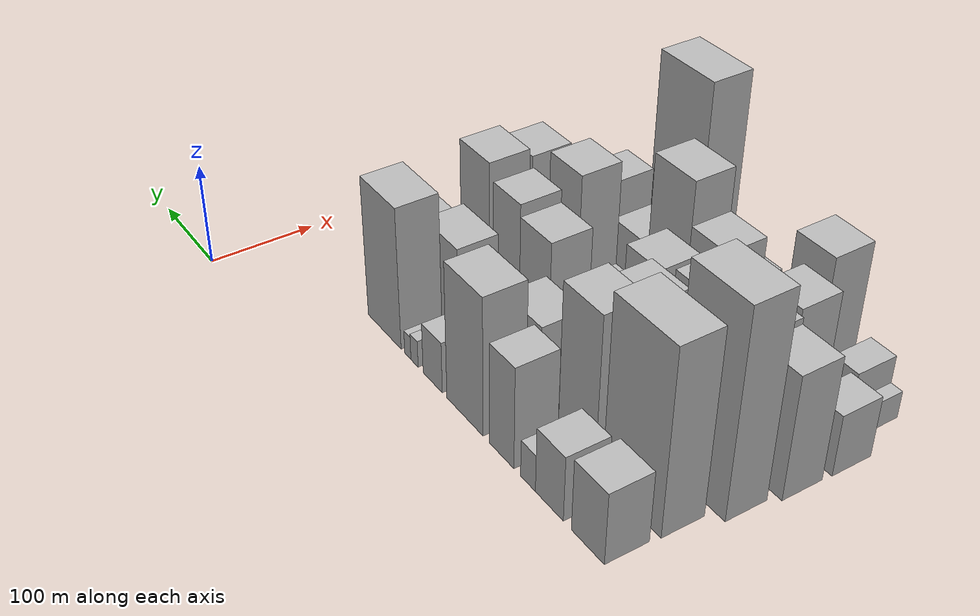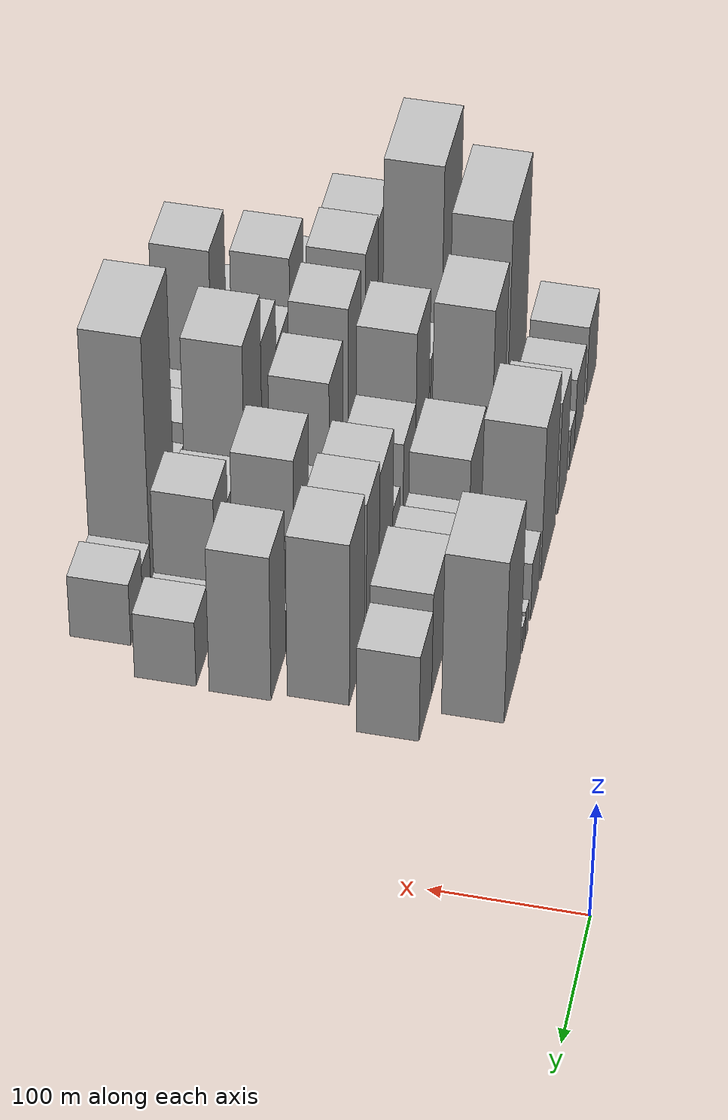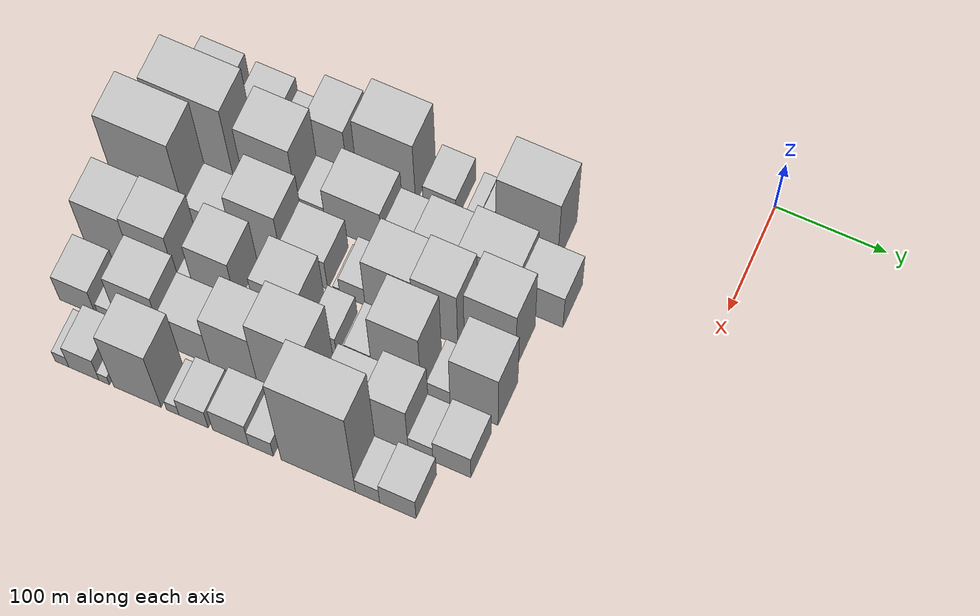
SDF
<sdf version="1.6">
 <world name="default">
  <model name="building_11">
   <static>1</static>
   <pose>100.0000 -465.9183 0 0.000000 0.000000 0.000000</pose>
   <link name="link">
    <pose>0 0 34.50 0 0 0</pose>
    <collision name="collision"><geometry><box><size>40.0000 39.9749 69.0000</size></box></geometry></collision>
    <visual name="visual">
     <cast_shadows>0</cast_shadows>
     <geometry><box><size>40.0000 39.9749 69.0000</size></box></geometry>
     <material>
      <script>
       <uri>model://HANNAS_wall/materials/scripts</uri>
       <uri>model://HANNAS_wall/materials/textures</uri>
       <name>vrc/HANNAS_wall</name>
      </script>
     </material>
    </visual>
   </link>
  </model>
  <model name="building_12">
   <static>1</static>
   <pose>100.0000 -417.9923 0 0.000000 0.000000 0.000000</pose>
   <link name="link">
    <pose>0 0 31.50 0 0 0</pose>
    <collision name="collision"><geometry><box><size>40.0000 35.8771 63.0000</size></box></geometry></collision>
    <visual name="visual">
     <cast_shadows>0</cast_shadows>
     <geometry><box><size>40.0000 35.8771 63.0000</size></box></geometry>
     <material>
      <script>
       <uri>model://HANNAS_wall/materials/scripts</uri>
       <uri>model://HANNAS_wall/materials/textures</uri>
       <name>vrc/HANNAS_wall</name>
      </script>
     </material>
    </visual>
   </link>
  </model>
  <model name="building_13">
   <static>1</static>
   <pose>100.0000 -390.1856 0 0.000000 0.000000 0.000000</pose>
   <link name="link">
    <pose>0 0 18.00 0 0 0</pose>
    <collision name="collision"><geometry><box><size>40.0000 19.7364 36.0000</size></box></geometry></collision>
    <visual name="visual">
     <cast_shadows>0</cast_shadows>
     <geometry><box><size>40.0000 19.7364 36.0000</size></box></geometry>
     <material>
      <script>
       <uri>model://HANNAS_wall/materials/scripts</uri>
       <uri>model://HANNAS_wall/materials/textures</uri>
       <name>vrc/HANNAS_wall</name>
      </script>
     </material>
    </visual>
   </link>
  </model>
  <model name="building_14">
   <static>1</static>
   <pose>100.0000 -354.2431 0 0.000000 0.000000 0.000000</pose>
   <link name="link">
    <pose>0 0 49.50 0 0 0</pose>
    <collision name="collision"><geometry><box><size>40.0000 34.1485 99.0000</size></box></geometry></collision>
    <visual name="visual">
     <cast_shadows>0</cast_shadows>
     <geometry><box><size>40.0000 34.1485 99.0000</size></box></geometry>
     <material>
      <script>
       <uri>model://HANNAS_wall/materials/scripts</uri>
       <uri>model://HANNAS_wall/materials/textures</uri>
       <name>vrc/HANNAS_wall</name>
      </script>
     </material>
    </visual>
   </link>
  </model>
  <model name="building_15">
   <static>1</static>
   <pose>100.0000 -301.3422 0 0.000000 0.000000 0.000000</pose>
   <link name="link">
    <pose>0 0 67.50 0 0 0</pose>
    <collision name="collision"><geometry><box><size>40.0000 53.6532 135.0000</size></box></geometry></collision>
    <visual name="visual">
     <cast_shadows>0</cast_shadows>
     <geometry><box><size>40.0000 53.6532 135.0000</size></box></geometry>
     <material>
      <script>
       <uri>model://HANNAS_wall/materials/scripts</uri>
       <uri>model://HANNAS_wall/materials/textures</uri>
       <name>vrc/HANNAS_wall</name>
      </script>
     </material>
    </visual>
   </link>
  </model>
  <model name="building_16">
   <static>1</static>
   <pose>100.0000 -252.4780 0 0.000000 0.000000 0.000000</pose>
   <link name="link">
    <pose>0 0 25.50 0 0 0</pose>
    <collision name="collision"><geometry><box><size>40.0000 30.0753 51.0000</size></box></geometry></collision>
    <visual name="visual">
     <cast_shadows>0</cast_shadows>
     <geometry><box><size>40.0000 30.0753 51.0000</size></box></geometry>
     <material>
      <script>
       <uri>model://HANNAS_wall/materials/scripts</uri>
       <uri>model://HANNAS_wall/materials/textures</uri>
       <name>vrc/HANNAS_wall</name>
      </script>
     </material>
    </visual>
   </link>
  </model>
  <model name="building_17">
   <static>1</static>
   <pose>100.0000 -223.5903 0 0.000000 0.000000 0.000000</pose>
   <link name="link">
    <pose>0 0 13.50 0 0 0</pose>
    <collision name="collision"><geometry><box><size>40.0000 11.7002 27.0000</size></box></geometry></collision>
    <visual name="visual">
     <cast_shadows>0</cast_shadows>
     <geometry><box><size>40.0000 11.7002 27.0000</size></box></geometry>
     <material>
      <script>
       <uri>model://HANNAS_wall/materials/scripts</uri>
       <uri>model://HANNAS_wall/materials/textures</uri>
       <name>vrc/HANNAS_wall</name>
      </script>
     </material>
    </visual>
   </link>
  </model>
  <model name="building_18">
   <static>1</static>
   <pose>100.0000 -212.6931 0 0.000000 0.000000 0.000000</pose>
   <link name="link">
    <pose>0 0 12.00 0 0 0</pose>
    <collision name="collision"><geometry><box><size>40.0000 10.0943 24.0000</size></box></geometry></collision>
    <visual name="visual">
     <cast_shadows>0</cast_shadows>
     <geometry><box><size>40.0000 10.0943 24.0000</size></box></geometry>
     <material>
      <script>
       <uri>model://HANNAS_wall/materials/scripts</uri>
       <uri>model://HANNAS_wall/materials/textures</uri>
       <name>vrc/HANNAS_wall</name>
      </script>
     </material>
    </visual>
   </link>
  </model>
  <model name="building_19">
   <static>1</static>
   <pose>100.0000 -173.6003 0 0.000000 0.000000 0.000000</pose>
   <link name="link">
    <pose>0 0 70.50 0 0 0</pose>
    <collision name="collision"><geometry><box><size>40.0000 56.0913 141.0000</size></box></geometry></collision>
    <visual name="visual">
     <cast_shadows>0</cast_shadows>
     <geometry><box><size>40.0000 56.0913 141.0000</size></box></geometry>
     <material>
      <script>
       <uri>model://HANNAS_wall/materials/scripts</uri>
       <uri>model://HANNAS_wall/materials/textures</uri>
       <name>vrc/HANNAS_wall</name>
      </script>
     </material>
    </visual>
   </link>
  </model>
  <model name="building_57">
   <static>1</static>
   <pose>149.0000 -452.4649 0 0.000000 0.000000 0.000000</pose>
   <link name="link">
    <pose>0 0 88.50 0 0 0</pose>
    <collision name="collision"><geometry><box><size>40.0000 70.7655 177.0000</size></box></geometry></collision>
    <visual name="visual">
     <cast_shadows>0</cast_shadows>
     <geometry><box><size>40.0000 70.7655 177.0000</size></box></geometry>
     <material>
      <script>
       <uri>model://HANNAS_wall/materials/scripts</uri>
       <uri>model://HANNAS_wall/materials/textures</uri>
       <name>vrc/HANNAS_wall</name>
      </script>
     </material>
    </visual>
   </link>
  </model>
  <model name="building_58">
   <static>1</static>
   <pose>149.0000 -412.4409 0 0.000000 0.000000 0.000000</pose>
   <link name="link">
    <pose>0 0 10.50 0 0 0</pose>
    <collision name="collision"><geometry><box><size>40.0000 9.2826 21.0000</size></box></geometry></collision>
    <visual name="visual">
     <cast_shadows>0</cast_shadows>
     <geometry><box><size>40.0000 9.2826 21.0000</size></box></geometry>
     <material>
      <script>
       <uri>model://HANNAS_wall/materials/scripts</uri>
       <uri>model://HANNAS_wall/materials/textures</uri>
       <name>vrc/HANNAS_wall</name>
      </script>
     </material>
    </visual>
   </link>
  </model>
  <model name="building_59">
   <static>1</static>
   <pose>149.0000 -383.6070 0 0.000000 0.000000 0.000000</pose>
   <link name="link">
    <pose>0 0 75.00 0 0 0</pose>
    <collision name="collision"><geometry><box><size>40.0000 48.3852 150.0000</size></box></geometry></collision>
    <visual name="visual">
     <cast_shadows>0</cast_shadows>
     <geometry><box><size>40.0000 48.3852 150.0000</size></box></geometry>
     <material>
      <script>
       <uri>model://HANNAS_wall/materials/scripts</uri>
       <uri>model://HANNAS_wall/materials/textures</uri>
       <name>vrc/HANNAS_wall</name>
      </script>
     </material>
    </visual>
   </link>
  </model>
  <model name="building_60">
   <static>1</static>
   <pose>149.0000 -346.8234 0 0.000000 0.000000 0.000000</pose>
   <link name="link">
    <pose>0 0 22.50 0 0 0</pose>
    <collision name="collision"><geometry><box><size>40.0000 25.1820 45.0000</size></box></geometry></collision>
    <visual name="visual">
     <cast_shadows>0</cast_shadows>
     <geometry><box><size>40.0000 25.1820 45.0000</size></box></geometry>
     <material>
      <script>
       <uri>model://HANNAS_wall/materials/scripts</uri>
       <uri>model://HANNAS_wall/materials/textures</uri>
       <name>vrc/HANNAS_wall</name>
      </script>
     </material>
    </visual>
   </link>
  </model>
  <model name="building_61">
   <static>1</static>
   <pose>149.0000 -308.2573 0 0.000000 0.000000 0.000000</pose>
   <link name="link">
    <pose>0 0 45.00 0 0 0</pose>
    <collision name="collision"><geometry><box><size>40.0000 51.9501 90.0000</size></box></geometry></collision>
    <visual name="visual">
     <cast_shadows>0</cast_shadows>
     <geometry><box><size>40.0000 51.9501 90.0000</size></box></geometry>
     <material>
      <script>
       <uri>model://HANNAS_wall/materials/scripts</uri>
       <uri>model://HANNAS_wall/materials/textures</uri>
       <name>vrc/HANNAS_wall</name>
      </script>
     </material>
    </visual>
   </link>
  </model>
  <model name="building_62">
   <static>1</static>
   <pose>149.0000 -268.3880 0 0.000000 0.000000 0.000000</pose>
   <link name="link">
    <pose>0 0 27.00 0 0 0</pose>
    <collision name="collision"><geometry><box><size>40.0000 27.7886 54.0000</size></box></geometry></collision>
    <visual name="visual">
     <cast_shadows>0</cast_shadows>
     <geometry><box><size>40.0000 27.7886 54.0000</size></box></geometry>
     <material>
      <script>
       <uri>model://HANNAS_wall/materials/scripts</uri>
       <uri>model://HANNAS_wall/materials/textures</uri>
       <name>vrc/HANNAS_wall</name>
      </script>
     </material>
    </visual>
   </link>
  </model>
  <model name="building_63">
   <static>1</static>
   <pose>149.0000 -234.0115 0 0.000000 0.000000 0.000000</pose>
   <link name="link">
    <pose>0 0 34.50 0 0 0</pose>
    <collision name="collision"><geometry><box><size>40.0000 40.9645 69.0000</size></box></geometry></collision>
    <visual name="visual">
     <cast_shadows>0</cast_shadows>
     <geometry><box><size>40.0000 40.9645 69.0000</size></box></geometry>
     <material>
      <script>
       <uri>model://HANNAS_wall/materials/scripts</uri>
       <uri>model://HANNAS_wall/materials/textures</uri>
       <name>vrc/HANNAS_wall</name>
      </script>
     </material>
    </visual>
   </link>
  </model>
  <model name="building_64">
   <static>1</static>
   <pose>149.0000 -186.5730 0 0.000000 0.000000 0.000000</pose>
   <link name="link">
    <pose>0 0 45.00 0 0 0</pose>
    <collision name="collision"><geometry><box><size>40.0000 53.9124 90.0000</size></box></geometry></collision>
    <visual name="visual">
     <cast_shadows>0</cast_shadows>
     <geometry><box><size>40.0000 53.9124 90.0000</size></box></geometry>
     <material>
      <script>
       <uri>model://HANNAS_wall/materials/scripts</uri>
       <uri>model://HANNAS_wall/materials/textures</uri>
       <name>vrc/HANNAS_wall</name>
      </script>
     </material>
    </visual>
   </link>
  </model>
  <model name="building_65">
   <static>1</static>
   <pose>149.0000 -139.4178 0 0.000000 0.000000 0.000000</pose>
   <link name="link">
    <pose>0 0 37.50 0 0 0</pose>
    <collision name="collision"><geometry><box><size>40.0000 40.3981 75.0000</size></box></geometry></collision>
    <visual name="visual">
     <cast_shadows>0</cast_shadows>
     <geometry><box><size>40.0000 40.3981 75.0000</size></box></geometry>
     <material>
      <script>
       <uri>model://HANNAS_wall/materials/scripts</uri>
       <uri>model://HANNAS_wall/materials/textures</uri>
       <name>vrc/HANNAS_wall</name>
      </script>
     </material>
    </visual>
   </link>
  </model>
  <model name="building_104">
   <static>1</static>
   <pose>198.0000 -468.4718 0 0.000000 0.000000 0.000000</pose>
   <link name="link">
    <pose>0 0 99.00 0 0 0</pose>
    <collision name="collision"><geometry><box><size>40.0000 63.8551 198.0000</size></box></geometry></collision>
    <visual name="visual">
     <cast_shadows>0</cast_shadows>
     <geometry><box><size>40.0000 63.8551 198.0000</size></box></geometry>
     <material>
      <script>
       <uri>model://HANNAS_wall/materials/scripts</uri>
       <uri>model://HANNAS_wall/materials/textures</uri>
       <name>vrc/HANNAS_wall</name>
      </script>
     </material>
    </visual>
   </link>
  </model>
  <model name="building_105">
   <static>1</static>
   <pose>198.0000 -418.4392 0 0.000000 0.000000 0.000000</pose>
   <link name="link">
    <pose>0 0 31.50 0 0 0</pose>
    <collision name="collision"><geometry><box><size>40.0000 36.2102 63.0000</size></box></geometry></collision>
    <visual name="visual">
     <cast_shadows>0</cast_shadows>
     <geometry><box><size>40.0000 36.2102 63.0000</size></box></geometry>
     <material>
      <script>
       <uri>model://HANNAS_wall/materials/scripts</uri>
       <uri>model://HANNAS_wall/materials/textures</uri>
       <name>vrc/HANNAS_wall</name>
      </script>
     </material>
    </visual>
   </link>
  </model>
  <model name="building_106">
   <static>1</static>
   <pose>198.0000 -372.7475 0 0.000000 0.000000 0.000000</pose>
   <link name="link">
    <pose>0 0 64.50 0 0 0</pose>
    <collision name="collision"><geometry><box><size>40.0000 45.1733 129.0000</size></box></geometry></collision>
    <visual name="visual">
     <cast_shadows>0</cast_shadows>
     <geometry><box><size>40.0000 45.1733 129.0000</size></box></geometry>
     <material>
      <script>
       <uri>model://HANNAS_wall/materials/scripts</uri>
       <uri>model://HANNAS_wall/materials/textures</uri>
       <name>vrc/HANNAS_wall</name>
      </script>
     </material>
    </visual>
   </link>
  </model>
  <model name="building_107">
   <static>1</static>
   <pose>198.0000 -329.9323 0 0.000000 0.000000 0.000000</pose>
   <link name="link">
    <pose>0 0 34.50 0 0 0</pose>
    <collision name="collision"><geometry><box><size>40.0000 40.4570 69.0000</size></box></geometry></collision>
    <visual name="visual">
     <cast_shadows>0</cast_shadows>
     <geometry><box><size>40.0000 40.4570 69.0000</size></box></geometry>
     <material>
      <script>
       <uri>model://HANNAS_wall/materials/scripts</uri>
       <uri>model://HANNAS_wall/materials/textures</uri>
       <name>vrc/HANNAS_wall</name>
      </script>
     </material>
    </visual>
   </link>
  </model>
  <model name="building_108">
   <static>1</static>
   <pose>198.0000 -301.6781 0 0.000000 0.000000 0.000000</pose>
   <link name="link">
    <pose>0 0 7.50 0 0 0</pose>
    <collision name="collision"><geometry><box><size>40.0000 6.0512 15.0000</size></box></geometry></collision>
    <visual name="visual">
     <cast_shadows>0</cast_shadows>
     <geometry><box><size>40.0000 6.0512 15.0000</size></box></geometry>
     <material>
      <script>
       <uri>model://HANNAS_wall/materials/scripts</uri>
       <uri>model://HANNAS_wall/materials/textures</uri>
       <name>vrc/HANNAS_wall</name>
      </script>
     </material>
    </visual>
   </link>
  </model>
  <model name="building_109">
   <static>1</static>
   <pose>198.0000 -287.1992 0 0.000000 0.000000 0.000000</pose>
   <link name="link">
    <pose>0 0 21.00 0 0 0</pose>
    <collision name="collision"><geometry><box><size>40.0000 22.9067 42.0000</size></box></geometry></collision>
    <visual name="visual">
     <cast_shadows>0</cast_shadows>
     <geometry><box><size>40.0000 22.9067 42.0000</size></box></geometry>
     <material>
      <script>
       <uri>model://HANNAS_wall/materials/scripts</uri>
       <uri>model://HANNAS_wall/materials/textures</uri>
       <name>vrc/HANNAS_wall</name>
      </script>
     </material>
    </visual>
   </link>
  </model>
  <model name="building_110">
   <static>1</static>
   <pose>198.0000 -253.8869 0 0.000000 0.000000 0.000000</pose>
   <link name="link">
    <pose>0 0 57.00 0 0 0</pose>
    <collision name="collision"><geometry><box><size>40.0000 43.7178 114.0000</size></box></geometry></collision>
    <visual name="visual">
     <cast_shadows>0</cast_shadows>
     <geometry><box><size>40.0000 43.7178 114.0000</size></box></geometry>
     <material>
      <script>
       <uri>model://HANNAS_wall/materials/scripts</uri>
       <uri>model://HANNAS_wall/materials/textures</uri>
       <name>vrc/HANNAS_wall</name>
      </script>
     </material>
    </visual>
   </link>
  </model>
  <model name="building_111">
   <static>1</static>
   <pose>198.0000 -212.0561 0 0.000000 0.000000 0.000000</pose>
   <link name="link">
    <pose>0 0 63.00 0 0 0</pose>
    <collision name="collision"><geometry><box><size>40.0000 39.9439 126.0000</size></box></geometry></collision>
    <visual name="visual">
     <cast_shadows>0</cast_shadows>
     <geometry><box><size>40.0000 39.9439 126.0000</size></box></geometry>
     <material>
      <script>
       <uri>model://HANNAS_wall/materials/scripts</uri>
       <uri>model://HANNAS_wall/materials/textures</uri>
       <name>vrc/HANNAS_wall</name>
      </script>
     </material>
    </visual>
   </link>
  </model>
  <model name="building_112">
   <static>1</static>
   <pose>198.0000 -163.2301 0 0.000000 0.000000 0.000000</pose>
   <link name="link">
    <pose>0 0 70.50 0 0 0</pose>
    <collision name="collision"><geometry><box><size>40.0000 45.7080 141.0000</size></box></geometry></collision>
    <visual name="visual">
     <cast_shadows>0</cast_shadows>
     <geometry><box><size>40.0000 45.7080 141.0000</size></box></geometry>
     <material>
      <script>
       <uri>model://HANNAS_wall/materials/scripts</uri>
       <uri>model://HANNAS_wall/materials/textures</uri>
       <name>vrc/HANNAS_wall</name>
      </script>
     </material>
    </visual>
   </link>
  </model>
  <model name="building_160">
   <static>1</static>
   <pose>247.0000 -485.3139 0 0.000000 0.000000 0.000000</pose>
   <link name="link">
    <pose>0 0 60.00 0 0 0</pose>
    <collision name="collision"><geometry><box><size>40.0000 43.1761 120.0000</size></box></geometry></collision>
    <visual name="visual">
     <cast_shadows>0</cast_shadows>
     <geometry><box><size>40.0000 43.1761 120.0000</size></box></geometry>
     <material>
      <script>
       <uri>model://HANNAS_wall/materials/scripts</uri>
       <uri>model://HANNAS_wall/materials/textures</uri>
       <name>vrc/HANNAS_wall</name>
      </script>
     </material>
    </visual>
   </link>
  </model>
  <model name="building_161">
   <static>1</static>
   <pose>247.0000 -443.3941 0 0.000000 0.000000 0.000000</pose>
   <link name="link">
    <pose>0 0 63.00 0 0 0</pose>
    <collision name="collision"><geometry><box><size>40.0000 40.6634 126.0000</size></box></geometry></collision>
    <visual name="visual">
     <cast_shadows>0</cast_shadows>
     <geometry><box><size>40.0000 40.6634 126.0000</size></box></geometry>
     <material>
      <script>
       <uri>model://HANNAS_wall/materials/scripts</uri>
       <uri>model://HANNAS_wall/materials/textures</uri>
       <name>vrc/HANNAS_wall</name>
      </script>
     </material>
    </visual>
   </link>
  </model>
  <model name="building_162">
   <static>1</static>
   <pose>247.0000 -415.0626 0 0.000000 0.000000 0.000000</pose>
   <link name="link">
    <pose>0 0 15.00 0 0 0</pose>
    <collision name="collision"><geometry><box><size>40.0000 15.9996 30.0000</size></box></geometry></collision>
    <visual name="visual">
     <cast_shadows>0</cast_shadows>
     <geometry><box><size>40.0000 15.9996 30.0000</size></box></geometry>
     <material>
      <script>
       <uri>model://HANNAS_wall/materials/scripts</uri>
       <uri>model://HANNAS_wall/materials/textures</uri>
       <name>vrc/HANNAS_wall</name>
      </script>
     </material>
    </visual>
   </link>
  </model>
  <model name="building_163">
   <static>1</static>
   <pose>247.0000 -387.4445 0 0.000000 0.000000 0.000000</pose>
   <link name="link">
    <pose>0 0 63.00 0 0 0</pose>
    <collision name="collision"><geometry><box><size>40.0000 39.2365 126.0000</size></box></geometry></collision>
    <visual name="visual">
     <cast_shadows>0</cast_shadows>
     <geometry><box><size>40.0000 39.2365 126.0000</size></box></geometry>
     <material>
      <script>
       <uri>model://HANNAS_wall/materials/scripts</uri>
       <uri>model://HANNAS_wall/materials/textures</uri>
       <name>vrc/HANNAS_wall</name>
      </script>
     </material>
    </visual>
   </link>
  </model>
  <model name="building_164">
   <static>1</static>
   <pose>247.0000 -363.2681 0 0.000000 0.000000 0.000000</pose>
   <link name="link">
    <pose>0 0 10.50 0 0 0</pose>
    <collision name="collision"><geometry><box><size>40.0000 9.1164 21.0000</size></box></geometry></collision>
    <visual name="visual">
     <cast_shadows>0</cast_shadows>
     <geometry><box><size>40.0000 9.1164 21.0000</size></box></geometry>
     <material>
      <script>
       <uri>model://HANNAS_wall/materials/scripts</uri>
       <uri>model://HANNAS_wall/materials/textures</uri>
       <name>vrc/HANNAS_wall</name>
      </script>
     </material>
    </visual>
   </link>
  </model>
  <model name="building_165">
   <static>1</static>
   <pose>247.0000 -329.4950 0 0.000000 0.000000 0.000000</pose>
   <link name="link">
    <pose>0 0 57.00 0 0 0</pose>
    <collision name="collision"><geometry><box><size>40.0000 42.4298 114.0000</size></box></geometry></collision>
    <visual name="visual">
     <cast_shadows>0</cast_shadows>
     <geometry><box><size>40.0000 42.4298 114.0000</size></box></geometry>
     <material>
      <script>
       <uri>model://HANNAS_wall/materials/scripts</uri>
       <uri>model://HANNAS_wall/materials/textures</uri>
       <name>vrc/HANNAS_wall</name>
      </script>
     </material>
    </visual>
   </link>
  </model>
  <model name="building_166">
   <static>1</static>
   <pose>247.0000 -291.0494 0 0.000000 0.000000 0.000000</pose>
   <link name="link">
    <pose>0 0 22.50 0 0 0</pose>
    <collision name="collision"><geometry><box><size>40.0000 24.4615 45.0000</size></box></geometry></collision>
    <visual name="visual">
     <cast_shadows>0</cast_shadows>
     <geometry><box><size>40.0000 24.4615 45.0000</size></box></geometry>
     <material>
      <script>
       <uri>model://HANNAS_wall/materials/scripts</uri>
       <uri>model://HANNAS_wall/materials/textures</uri>
       <name>vrc/HANNAS_wall</name>
      </script>
     </material>
    </visual>
   </link>
  </model>
  <model name="building_167">
   <static>1</static>
   <pose>247.0000 -258.8559 0 0.000000 0.000000 0.000000</pose>
   <link name="link">
    <pose>0 0 21.00 0 0 0</pose>
    <collision name="collision"><geometry><box><size>40.0000 23.9255 42.0000</size></box></geometry></collision>
    <visual name="visual">
     <cast_shadows>0</cast_shadows>
     <geometry><box><size>40.0000 23.9255 42.0000</size></box></geometry>
     <material>
      <script>
       <uri>model://HANNAS_wall/materials/scripts</uri>
       <uri>model://HANNAS_wall/materials/textures</uri>
       <name>vrc/HANNAS_wall</name>
      </script>
     </material>
    </visual>
   </link>
  </model>
  <model name="building_168">
   <static>1</static>
   <pose>247.0000 -224.7908 0 0.000000 0.000000 0.000000</pose>
   <link name="link">
    <pose>0 0 72.00 0 0 0</pose>
    <collision name="collision"><geometry><box><size>40.0000 44.2046 144.0000</size></box></geometry></collision>
    <visual name="visual">
     <cast_shadows>0</cast_shadows>
     <geometry><box><size>40.0000 44.2046 144.0000</size></box></geometry>
     <material>
      <script>
       <uri>model://HANNAS_wall/materials/scripts</uri>
       <uri>model://HANNAS_wall/materials/textures</uri>
       <name>vrc/HANNAS_wall</name>
      </script>
     </material>
    </visual>
   </link>
  </model>
  <model name="building_169">
   <static>1</static>
   <pose>247.0000 -187.2966 0 0.000000 0.000000 0.000000</pose>
   <link name="link">
    <pose>0 0 18.00 0 0 0</pose>
    <collision name="collision"><geometry><box><size>40.0000 20.7839 36.0000</size></box></geometry></collision>
    <visual name="visual">
     <cast_shadows>0</cast_shadows>
     <geometry><box><size>40.0000 20.7839 36.0000</size></box></geometry>
     <material>
      <script>
       <uri>model://HANNAS_wall/materials/scripts</uri>
       <uri>model://HANNAS_wall/materials/textures</uri>
       <name>vrc/HANNAS_wall</name>
      </script>
     </material>
    </visual>
   </link>
  </model>
  <model name="building_170">
   <static>1</static>
   <pose>247.0000 -155.5110 0 0.000000 0.000000 0.000000</pose>
   <link name="link">
    <pose>0 0 63.00 0 0 0</pose>
    <collision name="collision"><geometry><box><size>40.0000 42.7872 126.0000</size></box></geometry></collision>
    <visual name="visual">
     <cast_shadows>0</cast_shadows>
     <geometry><box><size>40.0000 42.7872 126.0000</size></box></geometry>
     <material>
      <script>
       <uri>model://HANNAS_wall/materials/scripts</uri>
       <uri>model://HANNAS_wall/materials/textures</uri>
       <name>vrc/HANNAS_wall</name>
      </script>
     </material>
    </visual>
   </link>
  </model>
  <model name="building_210">
   <static>1</static>
   <pose>296.0000 -491.4739 0 0.000000 0.000000 0.000000</pose>
   <link name="link">
    <pose>0 0 30.00 0 0 0</pose>
    <collision name="collision"><geometry><box><size>40.0000 33.1265 60.0000</size></box></geometry></collision>
    <visual name="visual">
     <cast_shadows>0</cast_shadows>
     <geometry><box><size>40.0000 33.1265 60.0000</size></box></geometry>
     <material>
      <script>
       <uri>model://HANNAS_wall/materials/scripts</uri>
       <uri>model://HANNAS_wall/materials/textures</uri>
       <name>vrc/HANNAS_wall</name>
      </script>
     </material>
    </visual>
   </link>
  </model>
  <model name="building_211">
   <static>1</static>
   <pose>296.0000 -462.7991 0 0.000000 0.000000 0.000000</pose>
   <link name="link">
    <pose>0 0 16.50 0 0 0</pose>
    <collision name="collision"><geometry><box><size>40.0000 18.2231 33.0000</size></box></geometry></collision>
    <visual name="visual">
     <cast_shadows>0</cast_shadows>
     <geometry><box><size>40.0000 18.2231 33.0000</size></box></geometry>
     <material>
      <script>
       <uri>model://HANNAS_wall/materials/scripts</uri>
       <uri>model://HANNAS_wall/materials/textures</uri>
       <name>vrc/HANNAS_wall</name>
      </script>
     </material>
    </visual>
   </link>
  </model>
  <model name="building_212">
   <static>1</static>
   <pose>296.0000 -432.6915 0 0.000000 0.000000 0.000000</pose>
   <link name="link">
    <pose>0 0 61.50 0 0 0</pose>
    <collision name="collision"><geometry><box><size>40.0000 41.9921 123.0000</size></box></geometry></collision>
    <visual name="visual">
     <cast_shadows>0</cast_shadows>
     <geometry><box><size>40.0000 41.9921 123.0000</size></box></geometry>
     <material>
      <script>
       <uri>model://HANNAS_wall/materials/scripts</uri>
       <uri>model://HANNAS_wall/materials/textures</uri>
       <name>vrc/HANNAS_wall</name>
      </script>
     </material>
    </visual>
   </link>
  </model>
  <model name="building_213">
   <static>1</static>
   <pose>296.0000 -390.9832 0 0.000000 0.000000 0.000000</pose>
   <link name="link">
    <pose>0 0 40.50 0 0 0</pose>
    <collision name="collision"><geometry><box><size>40.0000 41.4245 81.0000</size></box></geometry></collision>
    <visual name="visual">
     <cast_shadows>0</cast_shadows>
     <geometry><box><size>40.0000 41.4245 81.0000</size></box></geometry>
     <material>
      <script>
       <uri>model://HANNAS_wall/materials/scripts</uri>
       <uri>model://HANNAS_wall/materials/textures</uri>
       <name>vrc/HANNAS_wall</name>
      </script>
     </material>
    </visual>
   </link>
  </model>
  <model name="building_214">
   <static>1</static>
   <pose>296.0000 -348.6577 0 0.000000 0.000000 0.000000</pose>
   <link name="link">
    <pose>0 0 61.50 0 0 0</pose>
    <collision name="collision"><geometry><box><size>40.0000 43.2265 123.0000</size></box></geometry></collision>
    <visual name="visual">
     <cast_shadows>0</cast_shadows>
     <geometry><box><size>40.0000 43.2265 123.0000</size></box></geometry>
     <material>
      <script>
       <uri>model://HANNAS_wall/materials/scripts</uri>
       <uri>model://HANNAS_wall/materials/textures</uri>
       <name>vrc/HANNAS_wall</name>
      </script>
     </material>
    </visual>
   </link>
  </model>
  <model name="building_215">
   <static>1</static>
   <pose>296.0000 -301.8094 0 0.000000 0.000000 0.000000</pose>
   <link name="link">
    <pose>0 0 82.50 0 0 0</pose>
    <collision name="collision"><geometry><box><size>40.0000 50.4700 165.0000</size></box></geometry></collision>
    <visual name="visual">
     <cast_shadows>0</cast_shadows>
     <geometry><box><size>40.0000 50.4700 165.0000</size></box></geometry>
     <material>
      <script>
       <uri>model://HANNAS_wall/materials/scripts</uri>
       <uri>model://HANNAS_wall/materials/textures</uri>
       <name>vrc/HANNAS_wall</name>
      </script>
     </material>
    </visual>
   </link>
  </model>
  <model name="building_216">
   <static>1</static>
   <pose>296.0000 -273.1562 0 0.000000 0.000000 0.000000</pose>
   <link name="link">
    <pose>0 0 7.50 0 0 0</pose>
    <collision name="collision"><geometry><box><size>40.0000 6.8364 15.0000</size></box></geometry></collision>
    <visual name="visual">
     <cast_shadows>0</cast_shadows>
     <geometry><box><size>40.0000 6.8364 15.0000</size></box></geometry>
     <material>
      <script>
       <uri>model://HANNAS_wall/materials/scripts</uri>
       <uri>model://HANNAS_wall/materials/textures</uri>
       <name>vrc/HANNAS_wall</name>
      </script>
     </material>
    </visual>
   </link>
  </model>
  <model name="building_217">
   <static>1</static>
   <pose>296.0000 -249.3790 0 0.000000 0.000000 0.000000</pose>
   <link name="link">
    <pose>0 0 37.50 0 0 0</pose>
    <collision name="collision"><geometry><box><size>40.0000 40.7180 75.0000</size></box></geometry></collision>
    <visual name="visual">
     <cast_shadows>0</cast_shadows>
     <geometry><box><size>40.0000 40.7180 75.0000</size></box></geometry>
     <material>
      <script>
       <uri>model://HANNAS_wall/materials/scripts</uri>
       <uri>model://HANNAS_wall/materials/textures</uri>
       <name>vrc/HANNAS_wall</name>
      </script>
     </material>
    </visual>
   </link>
  </model>
  <model name="building_218">
   <static>1</static>
   <pose>296.0000 -210.5413 0 0.000000 0.000000 0.000000</pose>
   <link name="link">
    <pose>0 0 55.50 0 0 0</pose>
    <collision name="collision"><geometry><box><size>40.0000 36.9575 111.0000</size></box></geometry></collision>
    <visual name="visual">
     <cast_shadows>0</cast_shadows>
     <geometry><box><size>40.0000 36.9575 111.0000</size></box></geometry>
     <material>
      <script>
       <uri>model://HANNAS_wall/materials/scripts</uri>
       <uri>model://HANNAS_wall/materials/textures</uri>
       <name>vrc/HANNAS_wall</name>
      </script>
     </material>
    </visual>
   </link>
  </model>
  <model name="building_219">
   <static>1</static>
   <pose>296.0000 -181.0284 0 0.000000 0.000000 0.000000</pose>
   <link name="link">
    <pose>0 0 19.50 0 0 0</pose>
    <collision name="collision"><geometry><box><size>40.0000 22.0682 39.0000</size></box></geometry></collision>
    <visual name="visual">
     <cast_shadows>0</cast_shadows>
     <geometry><box><size>40.0000 22.0682 39.0000</size></box></geometry>
     <material>
      <script>
       <uri>model://HANNAS_wall/materials/scripts</uri>
       <uri>model://HANNAS_wall/materials/textures</uri>
       <name>vrc/HANNAS_wall</name>
      </script>
     </material>
    </visual>
   </link>
  </model>
  <model name="building_220">
   <static>1</static>
   <pose>296.0000 -153.1517 0 0.000000 0.000000 0.000000</pose>
   <link name="link">
    <pose>0 0 28.50 0 0 0</pose>
    <collision name="collision"><geometry><box><size>40.0000 33.6852 57.0000</size></box></geometry></collision>
    <visual name="visual">
     <cast_shadows>0</cast_shadows>
     <geometry><box><size>40.0000 33.6852 57.0000</size></box></geometry>
     <material>
      <script>
       <uri>model://HANNAS_wall/materials/scripts</uri>
       <uri>model://HANNAS_wall/materials/textures</uri>
       <name>vrc/HANNAS_wall</name>
      </script>
     </material>
    </visual>
   </link>
  </model>
  <model name="building_260">
   <static>1</static>
   <pose>345.0000 -481.3394 0 0.000000 0.000000 0.000000</pose>
   <link name="link">
    <pose>0 0 13.50 0 0 0</pose>
    <collision name="collision"><geometry><box><size>40.0000 12.5003 27.0000</size></box></geometry></collision>
    <visual name="visual">
     <cast_shadows>0</cast_shadows>
     <geometry><box><size>40.0000 12.5003 27.0000</size></box></geometry>
     <material>
      <script>
       <uri>model://HANNAS_wall/materials/scripts</uri>
       <uri>model://HANNAS_wall/materials/textures</uri>
       <name>vrc/HANNAS_wall</name>
      </script>
     </material>
    </visual>
   </link>
  </model>
  <model name="building_261">
   <static>1</static>
   <pose>345.0000 -461.3278 0 0.000000 0.000000 0.000000</pose>
   <link name="link">
    <pose>0 0 27.00 0 0 0</pose>
    <collision name="collision"><geometry><box><size>40.0000 27.5229 54.0000</size></box></geometry></collision>
    <visual name="visual">
     <cast_shadows>0</cast_shadows>
     <geometry><box><size>40.0000 27.5229 54.0000</size></box></geometry>
     <material>
      <script>
       <uri>model://HANNAS_wall/materials/scripts</uri>
       <uri>model://HANNAS_wall/materials/textures</uri>
       <name>vrc/HANNAS_wall</name>
      </script>
     </material>
    </visual>
   </link>
  </model>
  <model name="building_262">
   <static>1</static>
   <pose>345.0000 -442.8340 0 0.000000 0.000000 0.000000</pose>
   <link name="link">
    <pose>0 0 10.50 0 0 0</pose>
    <collision name="collision"><geometry><box><size>40.0000 9.4648 21.0000</size></box></geometry></collision>
    <visual name="visual">
     <cast_shadows>0</cast_shadows>
     <geometry><box><size>40.0000 9.4648 21.0000</size></box></geometry>
     <material>
      <script>
       <uri>model://HANNAS_wall/materials/scripts</uri>
       <uri>model://HANNAS_wall/materials/textures</uri>
       <name>vrc/HANNAS_wall</name>
      </script>
     </material>
    </visual>
   </link>
  </model>
  <model name="building_263">
   <static>1</static>
   <pose>345.0000 -412.6310 0 0.000000 0.000000 0.000000</pose>
   <link name="link">
    <pose>0 0 69.00 0 0 0</pose>
    <collision name="collision"><geometry><box><size>40.0000 42.9412 138.0000</size></box></geometry></collision>
    <visual name="visual">
     <cast_shadows>0</cast_shadows>
     <geometry><box><size>40.0000 42.9412 138.0000</size></box></geometry>
     <material>
      <script>
       <uri>model://HANNAS_wall/materials/scripts</uri>
       <uri>model://HANNAS_wall/materials/textures</uri>
       <name>vrc/HANNAS_wall</name>
      </script>
     </material>
    </visual>
   </link>
  </model>
  <model name="building_264">
   <static>1</static>
   <pose>345.0000 -380.5479 0 0.000000 0.000000 0.000000</pose>
   <link name="link">
    <pose>0 0 12.00 0 0 0</pose>
    <collision name="collision"><geometry><box><size>40.0000 11.2250 24.0000</size></box></geometry></collision>
    <visual name="visual">
     <cast_shadows>0</cast_shadows>
     <geometry><box><size>40.0000 11.2250 24.0000</size></box></geometry>
     <material>
      <script>
       <uri>model://HANNAS_wall/materials/scripts</uri>
       <uri>model://HANNAS_wall/materials/textures</uri>
       <name>vrc/HANNAS_wall</name>
      </script>
     </material>
    </visual>
   </link>
  </model>
  <model name="building_265">
   <static>1</static>
   <pose>345.0000 -361.7700 0 0.000000 0.000000 0.000000</pose>
   <link name="link">
    <pose>0 0 22.50 0 0 0</pose>
    <collision name="collision"><geometry><box><size>40.0000 26.3307 45.0000</size></box></geometry></collision>
    <visual name="visual">
     <cast_shadows>0</cast_shadows>
     <geometry><box><size>40.0000 26.3307 45.0000</size></box></geometry>
     <material>
      <script>
       <uri>model://HANNAS_wall/materials/scripts</uri>
       <uri>model://HANNAS_wall/materials/textures</uri>
       <name>vrc/HANNAS_wall</name>
      </script>
     </material>
    </visual>
   </link>
  </model>
  <model name="building_266">
   <static>1</static>
   <pose>345.0000 -328.3522 0 0.000000 0.000000 0.000000</pose>
   <link name="link">
    <pose>0 0 28.50 0 0 0</pose>
    <collision name="collision"><geometry><box><size>40.0000 32.5049 57.0000</size></box></geometry></collision>
    <visual name="visual">
     <cast_shadows>0</cast_shadows>
     <geometry><box><size>40.0000 32.5049 57.0000</size></box></geometry>
     <material>
      <script>
       <uri>model://HANNAS_wall/materials/scripts</uri>
       <uri>model://HANNAS_wall/materials/textures</uri>
       <name>vrc/HANNAS_wall</name>
      </script>
     </material>
    </visual>
   </link>
  </model>
  <model name="building_267">
   <static>1</static>
   <pose>345.0000 -301.0558 0 0.000000 0.000000 0.000000</pose>
   <link name="link">
    <pose>0 0 19.50 0 0 0</pose>
    <collision name="collision"><geometry><box><size>40.0000 22.0880 39.0000</size></box></geometry></collision>
    <visual name="visual">
     <cast_shadows>0</cast_shadows>
     <geometry><box><size>40.0000 22.0880 39.0000</size></box></geometry>
     <material>
      <script>
       <uri>model://HANNAS_wall/materials/scripts</uri>
       <uri>model://HANNAS_wall/materials/textures</uri>
       <name>vrc/HANNAS_wall</name>
      </script>
     </material>
    </visual>
   </link>
  </model>
  <model name="building_268">
   <static>1</static>
   <pose>345.0000 -249.8076 0 0.000000 0.000000 0.000000</pose>
   <link name="link">
    <pose>0 0 108.00 0 0 0</pose>
    <collision name="collision"><geometry><box><size>40.0000 66.4084 216.0000</size></box></geometry></collision>
    <visual name="visual">
     <cast_shadows>0</cast_shadows>
     <geometry><box><size>40.0000 66.4084 216.0000</size></box></geometry>
     <material>
      <script>
       <uri>model://HANNAS_wall/materials/scripts</uri>
       <uri>model://HANNAS_wall/materials/textures</uri>
       <name>vrc/HANNAS_wall</name>
      </script>
     </material>
    </visual>
   </link>
  </model>
  <model name="building_269">
   <static>1</static>
   <pose>345.0000 -205.8301 0 0.000000 0.000000 0.000000</pose>
   <link name="link">
    <pose>0 0 19.50 0 0 0</pose>
    <collision name="collision"><geometry><box><size>40.0000 21.5465 39.0000</size></box></geometry></collision>
    <visual name="visual">
     <cast_shadows>0</cast_shadows>
     <geometry><box><size>40.0000 21.5465 39.0000</size></box></geometry>
     <material>
      <script>
       <uri>model://HANNAS_wall/materials/scripts</uri>
       <uri>model://HANNAS_wall/materials/textures</uri>
       <name>vrc/HANNAS_wall</name>
      </script>
     </material>
    </visual>
   </link>
  </model>
  <model name="building_270">
   <static>1</static>
   <pose>345.0000 -178.9084 0 0.000000 0.000000 0.000000</pose>
   <link name="link">
    <pose>0 0 27.00 0 0 0</pose>
    <collision name="collision"><geometry><box><size>40.0000 32.2968 54.0000</size></box></geometry></collision>
    <visual name="visual">
     <cast_shadows>0</cast_shadows>
     <geometry><box><size>40.0000 32.2968 54.0000</size></box></geometry>
     <material>
      <script>
       <uri>model://HANNAS_wall/materials/scripts</uri>
       <uri>model://HANNAS_wall/materials/textures</uri>
       <name>vrc/HANNAS_wall</name>
      </script>
     </material>
    </visual>
   </link>
  </model>
 </world>
</sdf>
